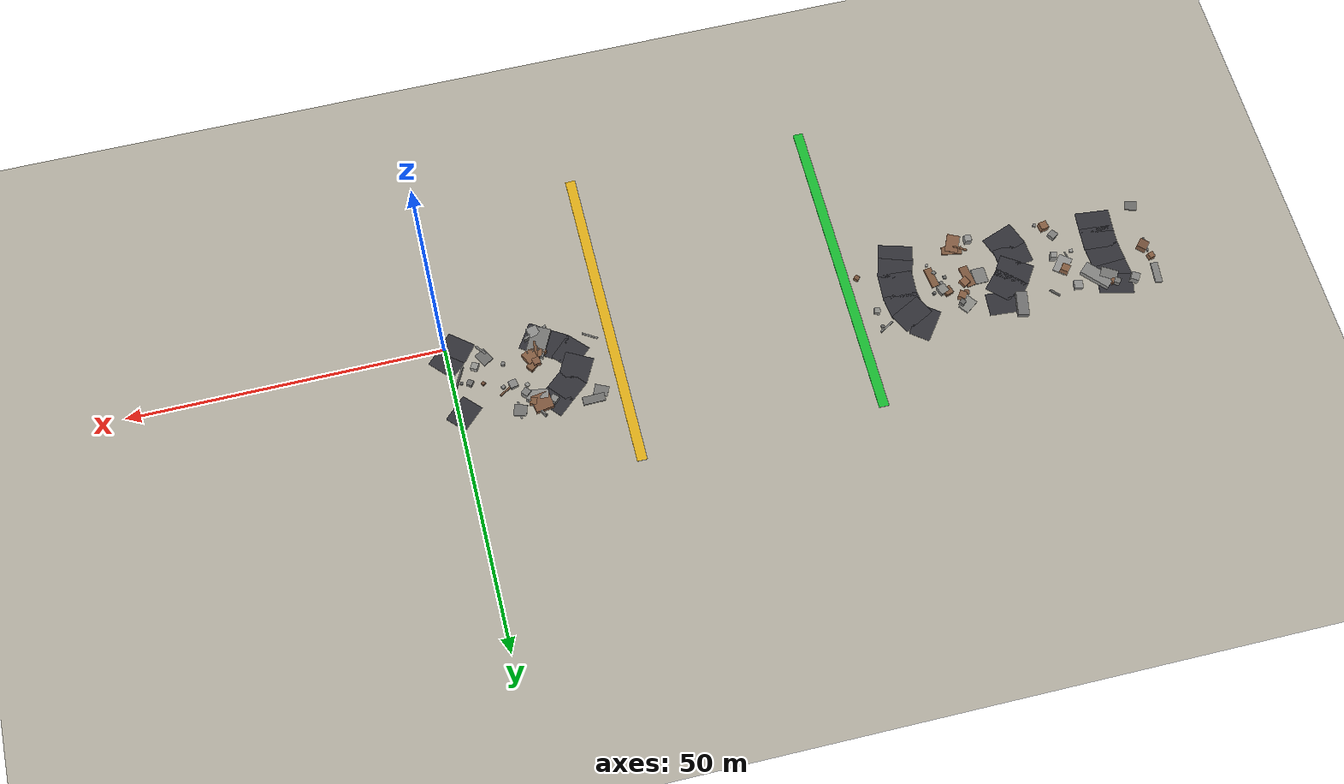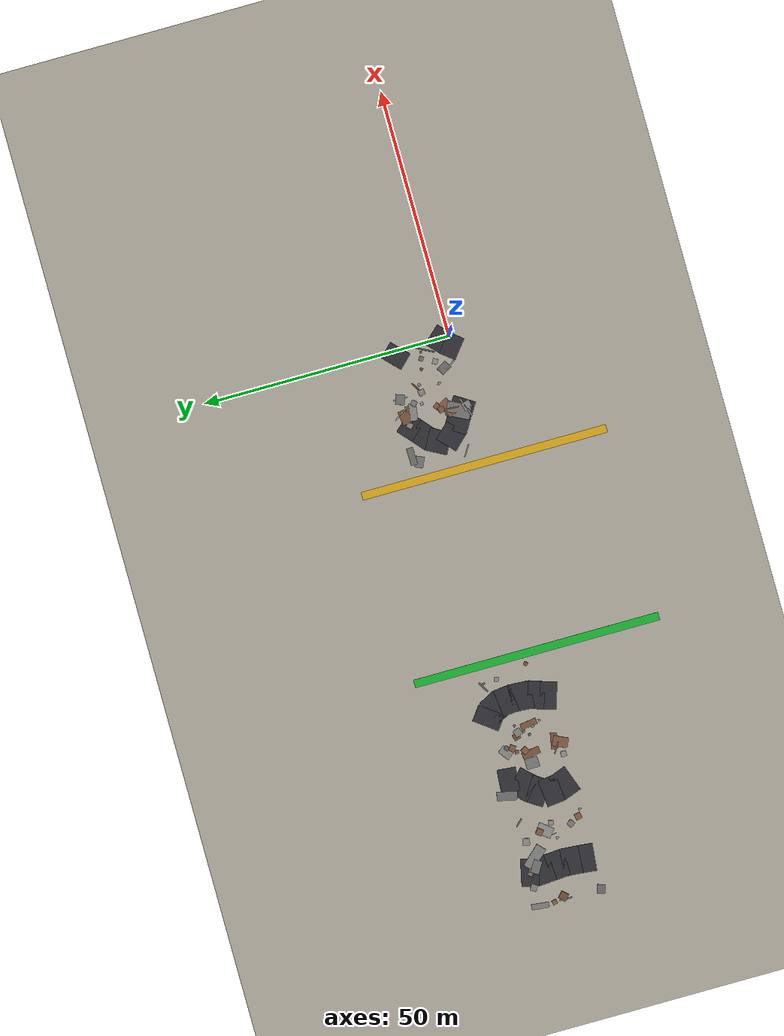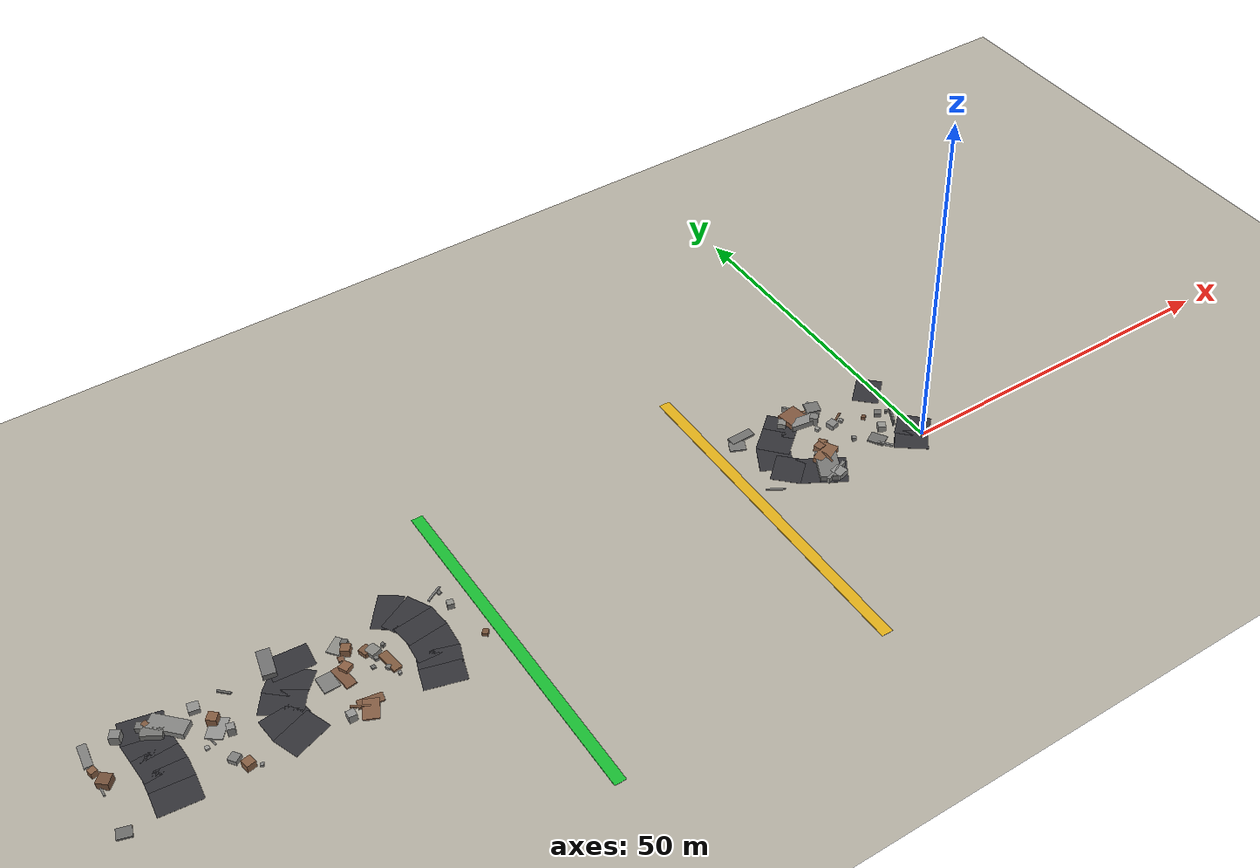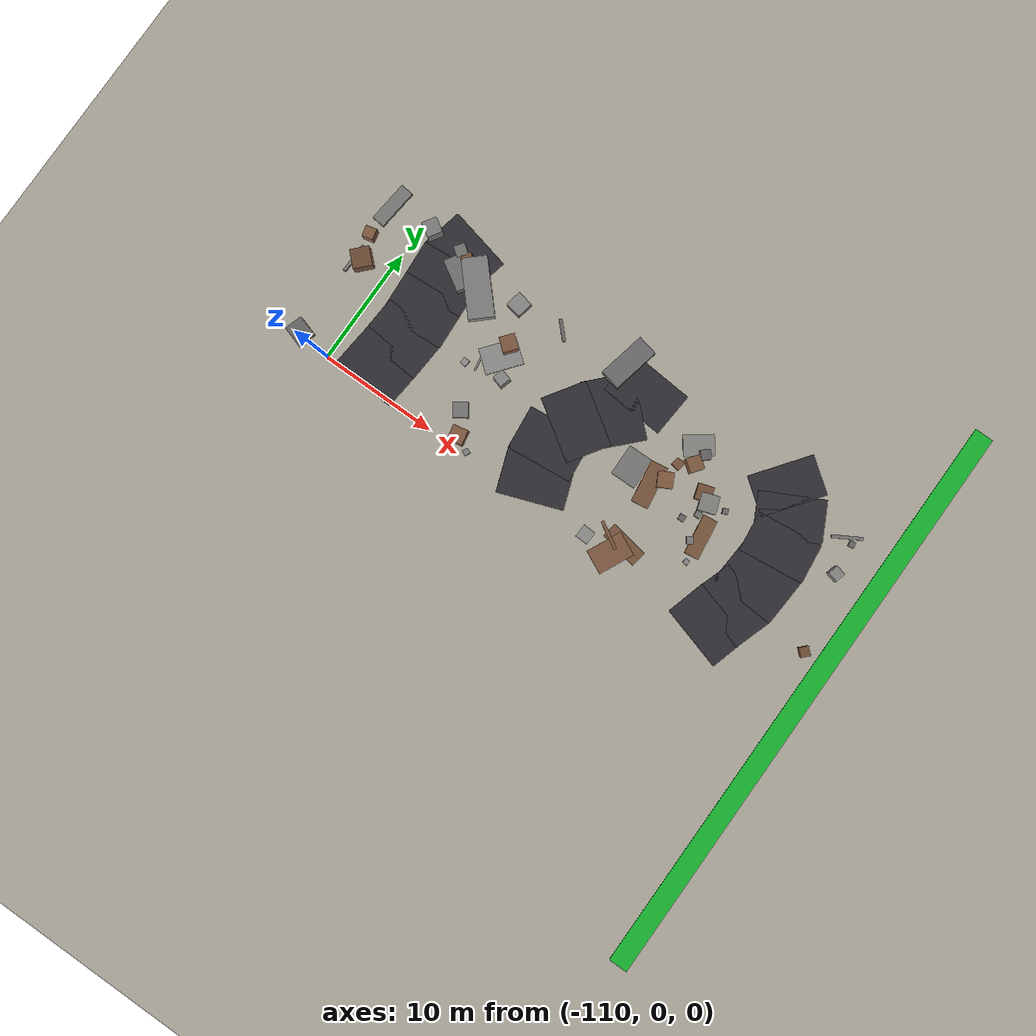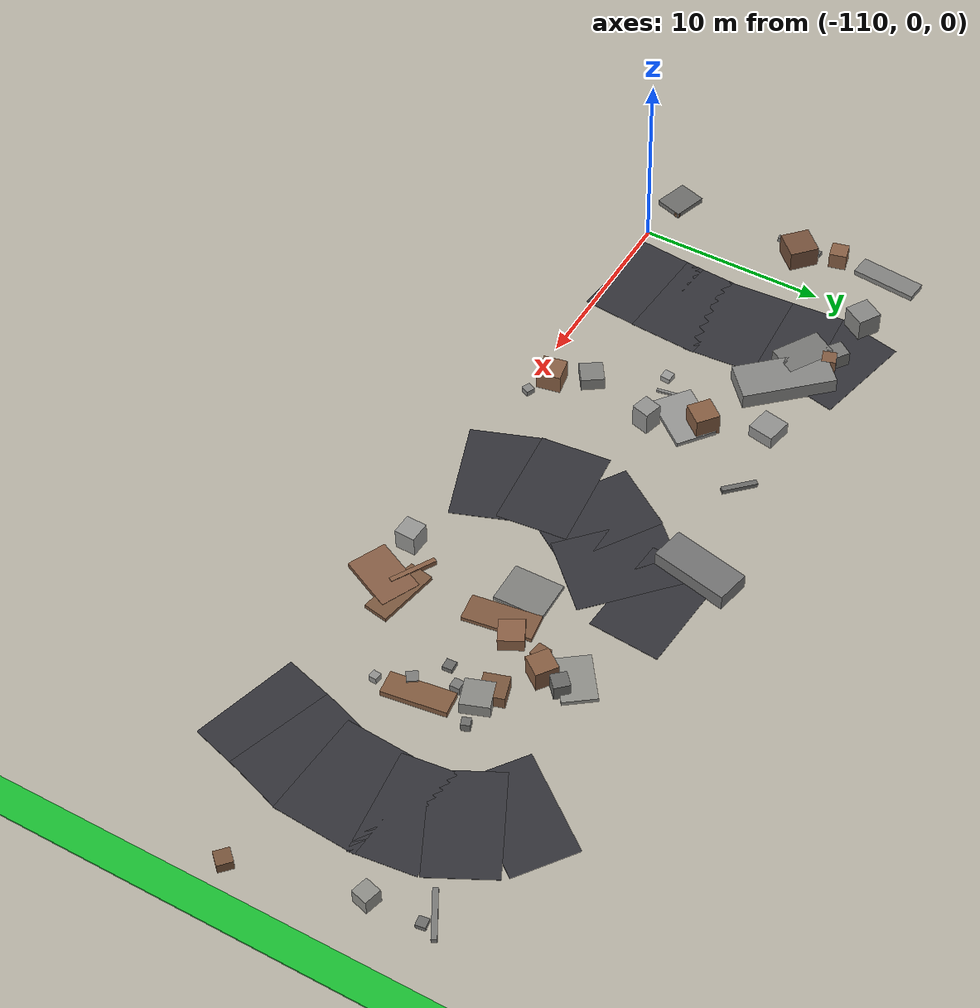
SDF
<sdf version="1.6">
 <world name="navitas_arena">
  <model name="ground_plane">
   <static>true</static>
   <link name="link">
    <collision name="collision">
     <geometry><plane><normal>0 0 1</normal><size>400 400</size></plane></geometry>
     <surface><friction><ode><mu>0.720</mu><mu2>0.720</mu2></ode></friction></surface>
    </collision>
    <visual name="visual">
     <cast_shadows>false</cast_shadows>
     <geometry><plane><normal>0 0 1</normal><size>400 400</size></plane></geometry>
     <material><ambient>0.720 0.700 0.650 1</ambient><diffuse>0.720 0.700 0.650 1</diffuse></material>
    </visual>
   </link>
  </model>
  <model name="brd_kolay_E">
   <static>true</static>
   <pose>-64.200 0.000 0.040 0 0 0.000</pose>
   <link name="link">
    <collision name="col"><geometry><box><size>1.600 50.000 0.080</size></box></geometry></collision>
    <visual name="vis">
     <geometry><box><size>1.600 50.000 0.080</size></box></geometry>
     <material><ambient>0.10 0.75 0.20 1</ambient><diffuse>0.10 0.75 0.20 1</diffuse></material>
    </visual>
   </link>
  </model>
  <model name="road_kolay_1_12">
   <static>true</static>
   <pose>-106.292 1.800 0.040 0 0 1.473</pose>
   <link name="link">
    <collision name="col"><geometry><box><size>3.714 5.520 0.020</size></box></geometry></collision>
    <visual name="vis">
     <geometry><box><size>3.714 5.520 0.020</size></box></geometry>
     <material><ambient>0.20 0.20 0.22 1</ambient><diffuse>0.20 0.20 0.22 1</diffuse></material>
    </visual>
   </link>
  </model>
  <model name="road_kolay_1_13">
   <static>true</static>
   <pose>-106.061 4.600 0.040 0 0 1.504</pose>
   <link name="link">
    <collision name="col"><geometry><box><size>3.706 5.520 0.020</size></box></geometry></collision>
    <visual name="vis">
     <geometry><box><size>3.706 5.520 0.020</size></box></geometry>
     <material><ambient>0.20 0.20 0.22 1</ambient><diffuse>0.20 0.20 0.22 1</diffuse></material>
    </visual>
   </link>
  </model>
  <model name="road_kolay_1_14">
   <static>true</static>
   <pose>-106.060 7.460 0.040 0 0 1.634</pose>
   <link name="link">
    <collision name="col"><geometry><box><size>3.826 5.520 0.020</size></box></geometry></collision>
    <visual name="vis">
     <geometry><box><size>3.826 5.520 0.020</size></box></geometry>
     <material><ambient>0.20 0.20 0.22 1</ambient><diffuse>0.20 0.20 0.22 1</diffuse></material>
    </visual>
   </link>
  </model>
  <model name="road_kolay_1_15">
   <static>true</static>
   <pose>-106.252 10.340 0.040 0 0 1.641</pose>
   <link name="link">
    <collision name="col"><geometry><box><size>3.747 5.520 0.020</size></box></geometry></collision>
    <visual name="vis">
     <geometry><box><size>3.747 5.520 0.020</size></box></geometry>
     <material><ambient>0.20 0.20 0.22 1</ambient><diffuse>0.20 0.20 0.22 1</diffuse></material>
    </visual>
   </link>
  </model>
  <model name="road_kolay_1_16">
   <static>true</static>
   <pose>-106.063 13.042 0.040 0 0 1.350</pose>
   <link name="link">
    <collision name="col"><geometry><box><size>3.528 5.520 0.020</size></box></geometry></collision>
    <visual name="vis">
     <geometry><box><size>3.528 5.520 0.020</size></box></geometry>
     <material><ambient>0.20 0.20 0.22 1</ambient><diffuse>0.20 0.20 0.22 1</diffuse></material>
    </visual>
   </link>
  </model>
  <model name="road_kolay_2_8">
   <static>true</static>
   <pose>-91.010 1.800 0.040 0 0 1.920</pose>
   <link name="link">
    <collision name="col"><geometry><box><size>3.880 5.520 0.020</size></box></geometry></collision>
    <visual name="vis">
     <geometry><box><size>3.880 5.520 0.020</size></box></geometry>
     <material><ambient>0.20 0.20 0.22 1</ambient><diffuse>0.20 0.20 0.22 1</diffuse></material>
    </visual>
   </link>
  </model>
  <model name="road_kolay_2_9">
   <static>true</static>
   <pose>-91.662 4.600 0.040 0 0 1.672</pose>
   <link name="link">
    <collision name="col"><geometry><box><size>3.714 5.520 0.020</size></box></geometry></collision>
    <visual name="vis">
     <geometry><box><size>3.714 5.520 0.020</size></box></geometry>
     <material><ambient>0.20 0.20 0.22 1</ambient><diffuse>0.20 0.20 0.22 1</diffuse></material>
    </visual>
   </link>
  </model>
  <model name="road_kolay_2_10">
   <static>true</static>
   <pose>-91.009 7.213 0.040 0 0 0.990</pose>
   <link name="link">
    <collision name="col"><geometry><box><size>3.802 5.520 0.020</size></box></geometry></collision>
    <visual name="vis">
     <geometry><box><size>3.802 5.520 0.020</size></box></geometry>
     <material><ambient>0.20 0.20 0.22 1</ambient><diffuse>0.20 0.20 0.22 1</diffuse></material>
    </visual>
   </link>
  </model>
  <model name="road_kolay_2_11">
   <static>true</static>
   <pose>-89.071 9.639 0.040 0 0 0.816</pose>
   <link name="link">
    <collision name="col"><geometry><box><size>4.232 5.520 0.020</size></box></geometry></collision>
    <visual name="vis">
     <geometry><box><size>4.232 5.520 0.020</size></box></geometry>
     <material><ambient>0.20 0.20 0.22 1</ambient><diffuse>0.20 0.20 0.22 1</diffuse></material>
    </visual>
   </link>
  </model>
  <model name="road_kolay_2_12">
   <static>true</static>
   <pose>-87.819 12.270 0.040 0 0 1.494</pose>
   <link name="link">
    <collision name="col"><geometry><box><size>3.746 5.520 0.020</size></box></geometry></collision>
    <visual name="vis">
     <geometry><box><size>3.746 5.520 0.020</size></box></geometry>
     <material><ambient>0.20 0.20 0.22 1</ambient><diffuse>0.20 0.20 0.22 1</diffuse></material>
    </visual>
   </link>
  </model>
  <model name="road_kolay_3_13">
   <static>true</static>
   <pose>-73.425 0.167 0.040 0 0 1.292</pose>
   <link name="link">
    <collision name="col"><geometry><box><size>3.327 5.520 0.020</size></box></geometry></collision>
    <visual name="vis">
     <geometry><box><size>3.327 5.520 0.020</size></box></geometry>
     <material><ambient>0.20 0.20 0.22 1</ambient><diffuse>0.20 0.20 0.22 1</diffuse></material>
    </visual>
   </link>
  </model>
  <model name="road_kolay_3_14">
   <static>true</static>
   <pose>-72.700 2.500 0.040 0 0 1.247</pose>
   <link name="link">
    <collision name="col"><geometry><box><size>3.361 5.520 0.020</size></box></geometry></collision>
    <visual name="vis">
     <geometry><box><size>3.361 5.520 0.020</size></box></geometry>
     <material><ambient>0.20 0.20 0.22 1</ambient><diffuse>0.20 0.20 0.22 1</diffuse></material>
    </visual>
   </link>
  </model>
  <model name="road_kolay_3_15">
   <static>true</static>
   <pose>-72.196 5.431 0.040 0 0 1.507</pose>
   <link name="link">
    <collision name="col"><geometry><box><size>4.436 5.520 0.020</size></box></geometry></collision>
    <visual name="vis">
     <geometry><box><size>4.436 5.520 0.020</size></box></geometry>
     <material><ambient>0.20 0.20 0.22 1</ambient><diffuse>0.20 0.20 0.22 1</diffuse></material>
    </visual>
   </link>
  </model>
  <model name="road_kolay_3_16">
   <static>true</static>
   <pose>-72.229 8.426 0.040 0 0 1.689</pose>
   <link name="link">
    <collision name="col"><geometry><box><size>3.378 5.520 0.020</size></box></geometry></collision>
    <visual name="vis">
     <geometry><box><size>3.378 5.520 0.020</size></box></geometry>
     <material><ambient>0.20 0.20 0.22 1</ambient><diffuse>0.20 0.20 0.22 1</diffuse></material>
    </visual>
   </link>
  </model>
  <model name="road_kolay_3_17">
   <static>true</static>
   <pose>-72.971 10.817 0.040 0 0 2.045</pose>
   <link name="link">
    <collision name="col"><geometry><box><size>3.510 5.520 0.020</size></box></geometry></collision>
    <visual name="vis">
     <geometry><box><size>3.510 5.520 0.020</size></box></geometry>
     <material><ambient>0.20 0.20 0.22 1</ambient><diffuse>0.20 0.20 0.22 1</diffuse></material>
    </visual>
   </link>
  </model>
  <model name="road_kolay_3_18">
   <static>true</static>
   <pose>-74.563 12.722 0.040 0 0 2.500</pose>
   <link name="link">
    <collision name="col"><geometry><box><size>3.385 5.520 0.020</size></box></geometry></collision>
    <visual name="vis">
     <geometry><box><size>3.385 5.520 0.020</size></box></geometry>
     <material><ambient>0.20 0.20 0.22 1</ambient><diffuse>0.20 0.20 0.22 1</diffuse></material>
    </visual>
   </link>
  </model>
  <model name="blk_kolay_1_1_1">
   <static>true</static>
   <pose>-106.239 12.950 0.425 0 0 0.953</pose>
   <link name="link">
    <collision name="col"><geometry><box><size>0.945 0.945 0.850</size></box></geometry></collision>
    <visual name="vis">
     <geometry><box><size>0.945 0.945 0.850</size></box></geometry>
     <material><ambient>0.47 0.47 0.46 1</ambient><diffuse>0.47 0.47 0.46 1</diffuse></material>
    </visual>
   </link>
  </model>
  <model name="blk_kolay_1_1_2">
   <static>true</static>
   <pose>-109.075 13.067 0.622 0 0 1.023</pose>
   <link name="link">
    <collision name="col"><geometry><box><size>1.285 1.285 1.243</size></box></geometry></collision>
    <visual name="vis">
     <geometry><box><size>1.285 1.285 1.243</size></box></geometry>
     <material><ambient>0.53 0.53 0.52 1</ambient><diffuse>0.53 0.53 0.52 1</diffuse></material>
    </visual>
   </link>
  </model>
  <model name="blk_kolay_1_1_3">
   <static>true</static>
   <pose>-105.275 11.510 0.425 0 0 2.600</pose>
   <link name="link">
    <collision name="col"><geometry><box><size>2.690 1.712 0.850</size></box></geometry></collision>
    <visual name="vis">
     <geometry><box><size>2.690 1.712 0.850</size></box></geometry>
     <material><ambient>0.47 0.47 0.46 1</ambient><diffuse>0.47 0.47 0.46 1</diffuse></material>
    </visual>
   </link>
  </model>
  <model name="blk_kolay_1_1_4">
   <static>true</static>
   <pose>-103.430 11.310 0.425 0 0 2.315</pose>
   <link name="link">
    <collision name="col"><geometry><box><size>4.928 2.129 0.850</size></box></geometry></collision>
    <visual name="vis">
     <geometry><box><size>4.928 2.129 0.850</size></box></geometry>
     <material><ambient>0.53 0.53 0.52 1</ambient><diffuse>0.53 0.53 0.52 1</diffuse></material>
    </visual>
   </link>
  </model>
  <model name="blk_kolay_1_1_6">
   <static>true</static>
   <pose>-105.601 12.809 0.425 0 0 1.890</pose>
   <link name="link">
    <collision name="col"><geometry><box><size>0.738 0.738 0.850</size></box></geometry></collision>
    <visual name="vis">
     <geometry><box><size>0.738 0.738 0.850</size></box></geometry>
     <material><ambient>0.51 0.36 0.26 1</ambient><diffuse>0.51 0.36 0.26 1</diffuse></material>
    </visual>
   </link>
  </model>
  <model name="blk_kolay_2_1_5">
   <static>true</static>
   <pose>-90.291 13.326 0.425 0 0 1.360</pose>
   <link name="link">
    <collision name="col"><geometry><box><size>4.060 1.748 0.850</size></box></geometry></collision>
    <visual name="vis">
     <geometry><box><size>4.060 1.748 0.850</size></box></geometry>
     <material><ambient>0.45 0.45 0.45 1</ambient><diffuse>0.45 0.45 0.45 1</diffuse></material>
    </visual>
   </link>
  </model>
  <model name="deb_kolay_0">
   <static>true</static>
   <pose>-83.755 1.420 0.145 0 0 2.621</pose>
   <link name="link">
    <collision name="col"><geometry><box><size>2.419 0.249 0.290</size></box></geometry></collision>
    <visual name="vis">
     <geometry><box><size>2.419 0.249 0.290</size></box></geometry>
     <material><ambient>0.54 0.38 0.27 1</ambient><diffuse>0.54 0.38 0.27 1</diffuse></material>
    </visual>
   </link>
  </model>
  <model name="deb_kolay_4">
   <static>true</static>
   <pose>-96.100 12.502 0.121 0 0 2.345</pose>
   <link name="link">
    <collision name="col"><geometry><box><size>1.824 0.286 0.242</size></box></geometry></collision>
    <visual name="vis">
     <geometry><box><size>1.824 0.286 0.242</size></box></geometry>
     <material><ambient>0.42 0.42 0.41 1</ambient><diffuse>0.42 0.42 0.41 1</diffuse></material>
    </visual>
   </link>
  </model>
  <model name="deb_kolay_5">
   <static>true</static>
   <pose>-112.941 7.632 0.127 0 0 1.543</pose>
   <link name="link">
    <collision name="col"><geometry><box><size>2.529 0.253 0.254</size></box></geometry></collision>
    <visual name="vis">
     <geometry><box><size>2.529 0.253 0.254</size></box></geometry>
     <material><ambient>0.49 0.49 0.48 1</ambient><diffuse>0.49 0.49 0.48 1</diffuse></material>
    </visual>
   </link>
  </model>
  <model name="deb_kolay_8">
   <static>true</static>
   <pose>-78.372 4.756 0.212 0 0 2.169</pose>
   <link name="link">
    <collision name="col"><geometry><box><size>0.574 0.574 0.424</size></box></geometry></collision>
    <visual name="vis">
     <geometry><box><size>0.574 0.574 0.424</size></box></geometry>
     <material><ambient>0.49 0.49 0.48 1</ambient><diffuse>0.49 0.49 0.48 1</diffuse></material>
    </visual>
   </link>
  </model>
  <model name="deb_kolay_9">
   <static>true</static>
   <pose>-100.905 5.984 0.149 0 0 3.071</pose>
   <link name="link">
    <collision name="col"><geometry><box><size>0.536 0.536 0.299</size></box></geometry></collision>
    <visual name="vis">
     <geometry><box><size>0.536 0.536 0.299</size></box></geometry>
     <material><ambient>0.61 0.61 0.60 1</ambient><diffuse>0.61 0.61 0.60 1</diffuse></material>
    </visual>
   </link>
  </model>
  <model name="deb_kolay_10">
   <static>true</static>
   <pose>-67.849 11.840 0.128 0 0 1.731</pose>
   <link name="link">
    <collision name="col"><geometry><box><size>0.497 0.497 0.255</size></box></geometry></collision>
    <visual name="vis">
     <geometry><box><size>0.497 0.497 0.255</size></box></geometry>
     <material><ambient>0.43 0.43 0.42 1</ambient><diffuse>0.43 0.43 0.42 1</diffuse></material>
    </visual>
   </link>
  </model>
  <model name="deb_kolay_13">
   <static>true</static>
   <pose>-97.872 0.941 0.520 0 0 0.194</pose>
   <link name="link">
    <collision name="col"><geometry><box><size>1.266 1.266 1.039</size></box></geometry></collision>
    <visual name="vis">
     <geometry><box><size>1.266 1.266 1.039</size></box></geometry>
     <material><ambient>0.54 0.38 0.27 1</ambient><diffuse>0.54 0.38 0.27 1</diffuse></material>
    </visual>
   </link>
  </model>
  <model name="deb_kolay_16">
   <static>true</static>
   <pose>-98.803 9.090 0.621 0 0 2.458</pose>
   <link name="link">
    <collision name="col"><geometry><box><size>1.273 1.273 1.241</size></box></geometry></collision>
    <visual name="vis">
     <geometry><box><size>1.273 1.273 1.241</size></box></geometry>
     <material><ambient>0.53 0.37 0.26 1</ambient><diffuse>0.53 0.37 0.26 1</diffuse></material>
    </visual>
   </link>
  </model>
  <model name="deb_kolay_20">
   <static>true</static>
   <pose>-112.910 12.828 0.147 0 0 1.467</pose>
   <link name="link">
    <collision name="col"><geometry><box><size>3.474 1.107 0.293</size></box></geometry></collision>
    <visual name="vis">
     <geometry><box><size>3.474 1.107 0.293</size></box></geometry>
     <material><ambient>0.51 0.51 0.50 1</ambient><diffuse>0.51 0.51 0.50 1</diffuse></material>
    </visual>
   </link>
  </model>
  <model name="deb_kolay_24">
   <static>true</static>
   <pose>-82.535 9.127 0.143 0 0 1.430</pose>
   <link name="link">
    <collision name="col"><geometry><box><size>0.752 0.752 0.286</size></box></geometry></collision>
    <visual name="vis">
     <geometry><box><size>0.752 0.752 0.286</size></box></geometry>
     <material><ambient>0.50 0.35 0.25 1</ambient><diffuse>0.50 0.35 0.25 1</diffuse></material>
    </visual>
   </link>
  </model>
  <model name="deb_kolay_28">
   <static>true</static>
   <pose>-78.997 6.772 0.228 0 0 1.586</pose>
   <link name="link">
    <collision name="col"><geometry><box><size>0.506 0.506 0.455</size></box></geometry></collision>
    <visual name="vis">
     <geometry><box><size>0.506 0.506 0.455</size></box></geometry>
     <material><ambient>0.48 0.48 0.47 1</ambient><diffuse>0.48 0.48 0.47 1</diffuse></material>
    </visual>
   </link>
  </model>
  <model name="deb_kolay_35">
   <static>true</static>
   <pose>-85.274 0.388 0.579 0 0 3.106</pose>
   <link name="link">
    <collision name="col"><geometry><box><size>1.080 1.080 1.157</size></box></geometry></collision>
    <visual name="vis">
     <geometry><box><size>1.080 1.080 1.157</size></box></geometry>
     <material><ambient>0.59 0.59 0.58 1</ambient><diffuse>0.59 0.59 0.58 1</diffuse></material>
    </visual>
   </link>
  </model>
  <model name="deb_kolay_40">
   <static>true</static>
   <pose>-112.806 0.699 0.118 0 0 0.075</pose>
   <link name="link">
    <collision name="col"><geometry><box><size>1.922 0.285 0.236</size></box></geometry></collision>
    <visual name="vis">
     <geometry><box><size>1.922 0.285 0.236</size></box></geometry>
     <material><ambient>0.46 0.33 0.23 1</ambient><diffuse>0.46 0.33 0.23 1</diffuse></material>
    </visual>
   </link>
  </model>
  <model name="deb_kolay_41">
   <static>true</static>
   <pose>-112.239 7.899 0.568 0 0 2.390</pose>
   <link name="link">
    <collision name="col"><geometry><box><size>1.561 1.561 1.136</size></box></geometry></collision>
    <visual name="vis">
     <geometry><box><size>1.561 1.561 1.136</size></box></geometry>
     <material><ambient>0.46 0.32 0.23 1</ambient><diffuse>0.46 0.32 0.23 1</diffuse></material>
    </visual>
   </link>
  </model>
  <model name="deb_kolay_47">
   <static>true</static>
   <pose>-81.516 9.792 0.570 0 0 0.941</pose>
   <link name="link">
    <collision name="col"><geometry><box><size>1.186 1.186 1.140</size></box></geometry></collision>
    <visual name="vis">
     <geometry><box><size>1.186 1.186 1.140</size></box></geometry>
     <material><ambient>0.53 0.37 0.26 1</ambient><diffuse>0.53 0.37 0.26 1</diffuse></material>
    </visual>
   </link>
  </model>
  <model name="deb_kolay_49">
   <static>true</static>
   <pose>-82.055 11.274 0.110 0 0 0.641</pose>
   <link name="link">
    <collision name="col"><geometry><box><size>2.513 1.729 0.219</size></box></geometry></collision>
    <visual name="vis">
     <geometry><box><size>2.513 1.729 0.219</size></box></geometry>
     <material><ambient>0.56 0.56 0.54 1</ambient><diffuse>0.56 0.56 0.54 1</diffuse></material>
    </visual>
   </link>
  </model>
  <model name="deb_kolay_51">
   <static>true</static>
   <pose>-96.647 0.253 0.148 0 0 2.717</pose>
   <link name="link">
    <collision name="col"><geometry><box><size>0.477 0.477 0.295</size></box></geometry></collision>
    <visual name="vis">
     <geometry><box><size>0.477 0.477 0.295</size></box></geometry>
     <material><ambient>0.53 0.53 0.52 1</ambient><diffuse>0.53 0.53 0.52 1</diffuse></material>
    </visual>
   </link>
  </model>
  <model name="deb_kolay_60">
   <static>true</static>
   <pose>-82.364 1.500 0.110 0 0 2.964</pose>
   <link name="link">
    <collision name="col"><geometry><box><size>3.247 1.315 0.219</size></box></geometry></collision>
    <visual name="vis">
     <geometry><box><size>3.247 1.315 0.219</size></box></geometry>
     <material><ambient>0.49 0.35 0.25 1</ambient><diffuse>0.49 0.35 0.25 1</diffuse></material>
    </visual>
   </link>
  </model>
  <model name="deb_kolay_63">
   <static>true</static>
   <pose>-66.205 2.830 0.279 0 0 2.394</pose>
   <link name="link">
    <collision name="col"><geometry><box><size>0.781 0.781 0.558</size></box></geometry></collision>
    <visual name="vis">
     <geometry><box><size>0.781 0.781 0.558</size></box></geometry>
     <material><ambient>0.47 0.33 0.23 1</ambient><diffuse>0.47 0.33 0.23 1</diffuse></material>
    </visual>
   </link>
  </model>
  <model name="deb_kolay_65">
   <static>true</static>
   <pose>-83.431 6.509 0.114 0 0 1.714</pose>
   <link name="link">
    <collision name="col"><geometry><box><size>3.569 1.430 0.229</size></box></geometry></collision>
    <visual name="vis">
     <geometry><box><size>3.569 1.430 0.229</size></box></geometry>
     <material><ambient>0.50 0.35 0.25 1</ambient><diffuse>0.50 0.35 0.25 1</diffuse></material>
    </visual>
   </link>
  </model>
  <model name="deb_kolay_72">
   <static>true</static>
   <pose>-98.840 8.001 0.107 0 0 0.904</pose>
   <link name="link">
    <collision name="col"><geometry><box><size>3.129 2.164 0.213</size></box></geometry></collision>
    <visual name="vis">
     <geometry><box><size>3.129 2.164 0.213</size></box></geometry>
     <material><ambient>0.59 0.59 0.58 1</ambient><diffuse>0.59 0.59 0.58 1</diffuse></material>
    </visual>
   </link>
  </model>
  <model name="deb_kolay_80">
   <static>true</static>
   <pose>-98.897 2.679 0.348 0 0 0.603</pose>
   <link name="link">
    <collision name="col"><geometry><box><size>1.211 1.211 0.696</size></box></geometry></collision>
    <visual name="vis">
     <geometry><box><size>1.211 1.211 0.696</size></box></geometry>
     <material><ambient>0.50 0.50 0.49 1</ambient><diffuse>0.50 0.50 0.49 1</diffuse></material>
    </visual>
   </link>
  </model>
  <model name="deb_kolay_83">
   <static>true</static>
   <pose>-82.658 7.492 0.366 0 0 2.053</pose>
   <link name="link">
    <collision name="col"><geometry><box><size>1.280 1.280 0.732</size></box></geometry></collision>
    <visual name="vis">
     <geometry><box><size>1.280 1.280 0.732</size></box></geometry>
     <material><ambient>0.55 0.38 0.27 1</ambient><diffuse>0.55 0.38 0.27 1</diffuse></material>
    </visual>
   </link>
  </model>
  <model name="deb_kolay_84">
   <static>true</static>
   <pose>-100.014 12.130 0.350 0 0 2.949</pose>
   <link name="link">
    <collision name="col"><geometry><box><size>1.379 1.379 0.699</size></box></geometry></collision>
    <visual name="vis">
     <geometry><box><size>1.379 1.379 0.699</size></box></geometry>
     <material><ambient>0.57 0.57 0.56 1</ambient><diffuse>0.57 0.57 0.56 1</diffuse></material>
    </visual>
   </link>
  </model>
  <model name="deb_kolay_86">
   <static>true</static>
   <pose>-112.929 0.404 0.141 0 0 2.844</pose>
   <link name="link">
    <collision name="col"><geometry><box><size>1.856 1.525 0.282</size></box></geometry></collision>
    <visual name="vis">
     <geometry><box><size>1.856 1.525 0.282</size></box></geometry>
     <material><ambient>0.43 0.43 0.42 1</ambient><diffuse>0.43 0.43 0.42 1</diffuse></material>
    </visual>
   </link>
  </model>
  <model name="deb_kolay_88">
   <static>true</static>
   <pose>-77.403 8.214 0.234 0 0 0.372</pose>
   <link name="link">
    <collision name="col"><geometry><box><size>0.455 0.455 0.469</size></box></geometry></collision>
    <visual name="vis">
     <geometry><box><size>0.455 0.455 0.469</size></box></geometry>
     <material><ambient>0.43 0.43 0.42 1</ambient><diffuse>0.43 0.43 0.42 1</diffuse></material>
    </visual>
   </link>
  </model>
  <model name="deb_kolay_89">
   <static>true</static>
   <pose>-79.863 5.837 0.136 0 0 1.638</pose>
   <link name="link">
    <collision name="col"><geometry><box><size>0.514 0.514 0.272</size></box></geometry></collision>
    <visual name="vis">
     <geometry><box><size>0.514 0.514 0.272</size></box></geometry>
     <material><ambient>0.42 0.42 0.41 1</ambient><diffuse>0.42 0.42 0.41 1</diffuse></material>
    </visual>
   </link>
  </model>
  <model name="deb_kolay_91">
   <static>true</static>
   <pose>-97.639 6.500 0.652 0 0 1.300</pose>
   <link name="link">
    <collision name="col"><geometry><box><size>0.967 0.967 1.303</size></box></geometry></collision>
    <visual name="vis">
     <geometry><box><size>0.967 0.967 1.303</size></box></geometry>
     <material><ambient>0.57 0.57 0.56 1</ambient><diffuse>0.57 0.57 0.56 1</diffuse></material>
    </visual>
   </link>
  </model>
  <model name="deb_kolay_98">
   <static>true</static>
   <pose>-79.575 8.403 0.349 0 0 0.301</pose>
   <link name="link">
    <collision name="col"><geometry><box><size>1.294 1.294 0.698</size></box></geometry></collision>
    <visual name="vis">
     <geometry><box><size>1.294 1.294 0.698</size></box></geometry>
     <material><ambient>0.48 0.34 0.24 1</ambient><diffuse>0.48 0.34 0.24 1</diffuse></material>
    </visual>
   </link>
  </model>
  <model name="deb_kolay_102">
   <static>true</static>
   <pose>-77.627 3.218 0.183 0 0 3.057</pose>
   <link name="link">
    <collision name="col"><geometry><box><size>0.411 0.411 0.366</size></box></geometry></collision>
    <visual name="vis">
     <geometry><box><size>0.411 0.411 0.366</size></box></geometry>
     <material><ambient>0.57 0.57 0.56 1</ambient><diffuse>0.57 0.57 0.56 1</diffuse></material>
    </visual>
   </link>
  </model>
  <model name="deb_kolay_109">
   <static>true</static>
   <pose>-78.851 7.950 0.350 0 0 0.342</pose>
   <link name="link">
    <collision name="col"><geometry><box><size>1.467 1.467 0.699</size></box></geometry></collision>
    <visual name="vis">
     <geometry><box><size>1.467 1.467 0.699</size></box></geometry>
     <material><ambient>0.54 0.54 0.52 1</ambient><diffuse>0.54 0.54 0.52 1</diffuse></material>
    </visual>
   </link>
  </model>
  <model name="deb_kolay_113">
   <static>true</static>
   <pose>-77.796 5.451 0.168 0 0 1.708</pose>
   <link name="link">
    <collision name="col"><geometry><box><size>3.327 1.206 0.337</size></box></geometry></collision>
    <visual name="vis">
     <geometry><box><size>3.327 1.206 0.337</size></box></geometry>
     <material><ambient>0.51 0.36 0.25 1</ambient><diffuse>0.51 0.36 0.25 1</diffuse></material>
    </visual>
   </link>
  </model>
  <model name="deb_kolay_124">
   <static>true</static>
   <pose>-82.859 0.341 0.123 0 0 1.133</pose>
   <link name="link">
    <collision name="col"><geometry><box><size>3.051 2.058 0.246</size></box></geometry></collision>
    <visual name="vis">
     <geometry><box><size>3.051 2.058 0.246</size></box></geometry>
     <material><ambient>0.53 0.37 0.27 1</ambient><diffuse>0.53 0.37 0.27 1</diffuse></material>
    </visual>
   </link>
  </model>
  <model name="deb_kolay_129">
   <static>true</static>
   <pose>-68.451 12.077 0.116 0 0 0.524</pose>
   <link name="link">
    <collision name="col"><geometry><box><size>2.525 0.271 0.232</size></box></geometry></collision>
    <visual name="vis">
     <geometry><box><size>2.525 0.271 0.232</size></box></geometry>
     <material><ambient>0.48 0.48 0.47 1</ambient><diffuse>0.48 0.48 0.47 1</diffuse></material>
    </visual>
   </link>
  </model>
  <model name="deb_kolay_131">
   <static>true</static>
   <pose>-85.357 6.843 0.103 0 0 1.583</pose>
   <link name="link">
    <collision name="col"><geometry><box><size>2.613 2.144 0.206</size></box></geometry></collision>
    <visual name="vis">
     <geometry><box><size>2.613 2.144 0.206</size></box></geometry>
     <material><ambient>0.50 0.50 0.49 1</ambient><diffuse>0.50 0.50 0.49 1</diffuse></material>
    </visual>
   </link>
  </model>
  <model name="deb_kolay_132">
   <static>true</static>
   <pose>-100.071 6.935 0.066 0 0 1.742</pose>
   <link name="link">
    <collision name="col"><geometry><box><size>2.094 0.155 0.132</size></box></geometry></collision>
    <visual name="vis">
     <geometry><box><size>2.094 0.155 0.132</size></box></geometry>
     <material><ambient>0.55 0.55 0.54 1</ambient><diffuse>0.55 0.55 0.54 1</diffuse></material>
    </visual>
   </link>
  </model>
  <model name="deb_kolay_135">
   <static>true</static>
   <pose>-112.939 9.922 0.464 0 0 1.809</pose>
   <link name="link">
    <collision name="col"><geometry><box><size>0.917 0.917 0.927</size></box></geometry></collision>
    <visual name="vis">
     <geometry><box><size>0.917 0.917 0.927</size></box></geometry>
     <material><ambient>0.54 0.38 0.27 1</ambient><diffuse>0.54 0.38 0.27 1</diffuse></material>
    </visual>
   </link>
  </model>
  <model name="chic_kolay_3">
   <static>true</static>
   <pose>-67.664 9.186 0.425 0 0 1.313</pose>
   <link name="link">
    <collision name="col"><geometry><box><size>0.883 0.883 0.850</size></box></geometry></collision>
    <visual name="vis">
     <geometry><box><size>0.883 0.883 0.850</size></box></geometry>
     <material><ambient>0.56 0.56 0.54 1</ambient><diffuse>0.56 0.56 0.54 1</diffuse></material>
    </visual>
   </link>
  </model>
  <model name="chic_kolay_4">
   <static>true</static>
   <pose>-81.221 10.898 0.425 0 0 2.317</pose>
   <link name="link">
    <collision name="col"><geometry><box><size>0.823 0.823 0.850</size></box></geometry></collision>
    <visual name="vis">
     <geometry><box><size>0.823 0.823 0.850</size></box></geometry>
     <material><ambient>0.41 0.41 0.40 1</ambient><diffuse>0.41 0.41 0.40 1</diffuse></material>
    </visual>
   </link>
  </model>
  <model name="brd_orta_W">
   <static>true</static>
   <pose>-25.800 0.000 0.040 0 0 0.000</pose>
   <link name="link">
    <collision name="col"><geometry><box><size>1.600 50.000 0.080</size></box></geometry></collision>
    <visual name="vis">
     <geometry><box><size>1.600 50.000 0.080</size></box></geometry>
     <material><ambient>0.90 0.70 0.10 1</ambient><diffuse>0.90 0.70 0.10 1</diffuse></material>
    </visual>
   </link>
  </model>
  <model name="road_orta_1_13">
   <static>true</static>
   <pose>-14.252 1.333 0.040 0 0 2.574</pose>
   <link name="link">
    <collision name="col"><geometry><box><size>3.791 4.600 0.020</size></box></geometry></collision>
    <visual name="vis">
     <geometry><box><size>3.791 4.600 0.020</size></box></geometry>
     <material><ambient>0.20 0.20 0.22 1</ambient><diffuse>0.20 0.20 0.22 1</diffuse></material>
    </visual>
   </link>
  </model>
  <model name="road_orta_1_14">
   <static>true</static>
   <pose>-16.748 2.889 0.040 0 0 2.595</pose>
   <link name="link">
    <collision name="col"><geometry><box><size>3.891 4.600 0.020</size></box></geometry></collision>
    <visual name="vis">
     <geometry><box><size>3.891 4.600 0.020</size></box></geometry>
     <material><ambient>0.20 0.20 0.22 1</ambient><diffuse>0.20 0.20 0.22 1</diffuse></material>
    </visual>
   </link>
  </model>
  <model name="road_orta_1_15">
   <static>true</static>
   <pose>-19.128 4.833 0.040 0 0 2.328</pose>
   <link name="link">
    <collision name="col"><geometry><box><size>4.109 4.600 0.020</size></box></geometry></collision>
    <visual name="vis">
     <geometry><box><size>4.109 4.600 0.020</size></box></geometry>
     <material><ambient>0.20 0.20 0.22 1</ambient><diffuse>0.20 0.20 0.22 1</diffuse></material>
    </visual>
   </link>
  </model>
  <model name="road_orta_1_16">
   <static>true</static>
   <pose>-19.398 7.566 0.040 0 0 1.083</pose>
   <link name="link">
    <collision name="col"><geometry><box><size>4.445 4.600 0.020</size></box></geometry></collision>
    <visual name="vis">
     <geometry><box><size>4.445 4.600 0.020</size></box></geometry>
     <material><ambient>0.20 0.20 0.22 1</ambient><diffuse>0.20 0.20 0.22 1</diffuse></material>
    </visual>
   </link>
  </model>
  <model name="road_orta_1_17">
   <static>true</static>
   <pose>-17.380 10.157 0.040 0 0 0.713</pose>
   <link name="link">
    <collision name="col"><geometry><box><size>4.036 4.600 0.020</size></box></geometry></collision>
    <visual name="vis">
     <geometry><box><size>4.036 4.600 0.020</size></box></geometry>
     <material><ambient>0.20 0.20 0.22 1</ambient><diffuse>0.20 0.20 0.22 1</diffuse></material>
    </visual>
   </link>
  </model>
  <model name="road_orta_1_18">
   <static>true</static>
   <pose>-15.175 12.091 0.040 0 0 0.728</pose>
   <link name="link">
    <collision name="col"><geometry><box><size>3.631 4.600 0.020</size></box></geometry></collision>
    <visual name="vis">
     <geometry><box><size>3.631 4.600 0.020</size></box></geometry>
     <material><ambient>0.20 0.20 0.22 1</ambient><diffuse>0.20 0.20 0.22 1</diffuse></material>
    </visual>
   </link>
  </model>
  <model name="road_orta_2_9">
   <static>true</static>
   <pose>-1.967 0.000 0.040 0 0 0.899</pose>
   <link name="link">
    <collision name="col"><geometry><box><size>3.455 4.600 0.020</size></box></geometry></collision>
    <visual name="vis">
     <geometry><box><size>3.455 4.600 0.020</size></box></geometry>
     <material><ambient>0.20 0.20 0.22 1</ambient><diffuse>0.20 0.20 0.22 1</diffuse></material>
    </visual>
   </link>
  </model>
  <model name="road_orta_2_10">
   <static>true</static>
   <pose>-0.106 2.000 0.040 0 0 0.753</pose>
   <link name="link">
    <collision name="col"><geometry><box><size>3.823 4.600 0.020</size></box></geometry></collision>
    <visual name="vis">
     <geometry><box><size>3.823 4.600 0.020</size></box></geometry>
     <material><ambient>0.20 0.20 0.22 1</ambient><diffuse>0.20 0.20 0.22 1</diffuse></material>
    </visual>
   </link>
  </model>
  <model name="road_orta_2_14">
   <static>true</static>
   <pose>-0.924 11.153 0.040 0 0 2.340</pose>
   <link name="link">
    <collision name="col"><geometry><box><size>3.624 4.600 0.020</size></box></geometry></collision>
    <visual name="vis">
     <geometry><box><size>3.624 4.600 0.020</size></box></geometry>
     <material><ambient>0.20 0.20 0.22 1</ambient><diffuse>0.20 0.20 0.22 1</diffuse></material>
    </visual>
   </link>
  </model>
  <model name="blk_orta_1_1_1">
   <static>true</static>
   <pose>-14.133 0.273 0.425 0 0 0.244</pose>
   <link name="link">
    <collision name="col"><geometry><box><size>1.694 1.694 0.850</size></box></geometry></collision>
    <visual name="vis">
     <geometry><box><size>1.694 1.694 0.850</size></box></geometry>
     <material><ambient>0.57 0.57 0.56 1</ambient><diffuse>0.57 0.57 0.56 1</diffuse></material>
    </visual>
   </link>
  </model>
  <model name="blk_orta_1_1_2">
   <static>true</static>
   <pose>-14.385 0.534 0.425 0 0 0.371</pose>
   <link name="link">
    <collision name="col"><geometry><box><size>4.001 0.413 0.850</size></box></geometry></collision>
    <visual name="vis">
     <geometry><box><size>4.001 0.413 0.850</size></box></geometry>
     <material><ambient>0.51 0.51 0.50 1</ambient><diffuse>0.51 0.51 0.50 1</diffuse></material>
    </visual>
   </link>
  </model>
  <model name="blk_orta_1_1_3">
   <static>true</static>
   <pose>-13.539 3.961 0.425 0 0 0.473</pose>
   <link name="link">
    <collision name="col"><geometry><box><size>3.507 2.063 0.850</size></box></geometry></collision>
    <visual name="vis">
     <geometry><box><size>3.507 2.063 0.850</size></box></geometry>
     <material><ambient>0.54 0.38 0.27 1</ambient><diffuse>0.54 0.38 0.27 1</diffuse></material>
    </visual>
   </link>
  </model>
  <model name="blk_orta_1_1_5">
   <static>true</static>
   <pose>-14.553 2.133 0.425 0 0 1.102</pose>
   <link name="link">
    <collision name="col"><geometry><box><size>4.900 2.899 0.850</size></box></geometry></collision>
    <visual name="vis">
     <geometry><box><size>4.900 2.899 0.850</size></box></geometry>
     <material><ambient>0.48 0.48 0.47 1</ambient><diffuse>0.48 0.48 0.47 1</diffuse></material>
    </visual>
   </link>
  </model>
  <model name="blk_orta_1_1_6">
   <static>true</static>
   <pose>-13.863 3.527 0.425 0 0 1.496</pose>
   <link name="link">
    <collision name="col"><geometry><box><size>3.150 0.413 0.850</size></box></geometry></collision>
    <visual name="vis">
     <geometry><box><size>3.150 0.413 0.850</size></box></geometry>
     <material><ambient>0.48 0.34 0.24 1</ambient><diffuse>0.48 0.34 0.24 1</diffuse></material>
    </visual>
   </link>
  </model>
  <model name="blk_orta_1_2_0">
   <static>true</static>
   <pose>-14.938 12.142 0.425 0 0 2.385</pose>
   <link name="link">
    <collision name="col"><geometry><box><size>1.097 1.097 0.850</size></box></geometry></collision>
    <visual name="vis">
     <geometry><box><size>1.097 1.097 0.850</size></box></geometry>
     <material><ambient>0.55 0.55 0.54 1</ambient><diffuse>0.55 0.55 0.54 1</diffuse></material>
    </visual>
   </link>
  </model>
  <model name="blk_orta_1_2_1">
   <static>true</static>
   <pose>-12.503 10.846 0.425 0 0 2.993</pose>
   <link name="link">
    <collision name="col"><geometry><box><size>3.487 1.512 0.850</size></box></geometry></collision>
    <visual name="vis">
     <geometry><box><size>3.487 1.512 0.850</size></box></geometry>
     <material><ambient>0.56 0.56 0.55 1</ambient><diffuse>0.56 0.56 0.55 1</diffuse></material>
    </visual>
   </link>
  </model>
  <model name="blk_orta_1_2_3">
   <static>true</static>
   <pose>-12.102 12.983 0.425 0 0 2.170</pose>
   <link name="link">
    <collision name="col"><geometry><box><size>3.854 0.268 0.850</size></box></geometry></collision>
    <visual name="vis">
     <geometry><box><size>3.854 0.268 0.850</size></box></geometry>
     <material><ambient>0.55 0.55 0.54 1</ambient><diffuse>0.55 0.55 0.54 1</diffuse></material>
    </visual>
   </link>
  </model>
  <model name="blk_orta_1_2_5">
   <static>true</static>
   <pose>-11.705 11.833 0.425 0 0 1.268</pose>
   <link name="link">
    <collision name="col"><geometry><box><size>1.063 1.063 0.850</size></box></geometry></collision>
    <visual name="vis">
     <geometry><box><size>1.063 1.063 0.850</size></box></geometry>
     <material><ambient>0.51 0.36 0.25 1</ambient><diffuse>0.51 0.36 0.25 1</diffuse></material>
    </visual>
   </link>
  </model>
  <model name="blk_orta_1_2_6">
   <static>true</static>
   <pose>-13.020 12.253 0.425 0 0 1.716</pose>
   <link name="link">
    <collision name="col"><geometry><box><size>2.776 2.898 0.850</size></box></geometry></collision>
    <visual name="vis">
     <geometry><box><size>2.776 2.898 0.850</size></box></geometry>
     <material><ambient>0.51 0.35 0.25 1</ambient><diffuse>0.51 0.35 0.25 1</diffuse></material>
    </visual>
   </link>
  </model>
  <model name="deb_orta_5">
   <static>true</static>
   <pose>-11.394 8.752 0.197 0 0 0.304</pose>
   <link name="link">
    <collision name="col"><geometry><box><size>0.598 0.598 0.395</size></box></geometry></collision>
    <visual name="vis">
     <geometry><box><size>0.598 0.598 0.395</size></box></geometry>
     <material><ambient>0.61 0.61 0.59 1</ambient><diffuse>0.61 0.61 0.59 1</diffuse></material>
    </visual>
   </link>
  </model>
  <model name="deb_orta_14">
   <static>true</static>
   <pose>-9.270 8.214 0.366 0 0 1.810</pose>
   <link name="link">
    <collision name="col"><geometry><box><size>1.223 1.223 0.732</size></box></geometry></collision>
    <visual name="vis">
     <geometry><box><size>1.223 1.223 0.732</size></box></geometry>
     <material><ambient>0.54 0.54 0.53 1</ambient><diffuse>0.54 0.54 0.53 1</diffuse></material>
    </visual>
   </link>
  </model>
  <model name="deb_orta_15">
   <static>true</static>
   <pose>-12.701 5.970 0.352 0 0 2.241</pose>
   <link name="link">
    <collision name="col"><geometry><box><size>1.195 1.195 0.705</size></box></geometry></collision>
    <visual name="vis">
     <geometry><box><size>1.195 1.195 0.705</size></box></geometry>
     <material><ambient>0.52 0.37 0.26 1</ambient><diffuse>0.52 0.37 0.26 1</diffuse></material>
    </visual>
   </link>
  </model>
  <model name="deb_orta_17">
   <static>true</static>
   <pose>-4.056 3.981 0.464 0 0 2.641</pose>
   <link name="link">
    <collision name="col"><geometry><box><size>1.080 1.080 0.927</size></box></geometry></collision>
    <visual name="vis">
     <geometry><box><size>1.080 1.080 0.927</size></box></geometry>
     <material><ambient>0.59 0.59 0.57 1</ambient><diffuse>0.59 0.59 0.57 1</diffuse></material>
    </visual>
   </link>
  </model>
  <model name="deb_orta_27">
   <static>true</static>
   <pose>-8.101 8.886 0.133 0 0 0.552</pose>
   <link name="link">
    <collision name="col"><geometry><box><size>2.617 0.277 0.266</size></box></geometry></collision>
    <visual name="vis">
     <geometry><box><size>2.617 0.277 0.266</size></box></geometry>
     <material><ambient>0.45 0.32 0.23 1</ambient><diffuse>0.45 0.32 0.23 1</diffuse></material>
    </visual>
   </link>
  </model>
  <model name="deb_orta_40">
   <static>true</static>
   <pose>-5.513 1.232 0.169 0 0 2.245</pose>
   <link name="link">
    <collision name="col"><geometry><box><size>2.106 0.272 0.339</size></box></geometry></collision>
    <visual name="vis">
     <geometry><box><size>2.106 0.272 0.339</size></box></geometry>
     <material><ambient>0.57 0.57 0.56 1</ambient><diffuse>0.57 0.57 0.56 1</diffuse></material>
    </visual>
   </link>
  </model>
  <model name="deb_orta_44">
   <static>true</static>
   <pose>-9.446 12.657 0.153 0 0 1.256</pose>
   <link name="link">
    <collision name="col"><geometry><box><size>1.825 2.033 0.305</size></box></geometry></collision>
    <visual name="vis">
     <geometry><box><size>1.825 2.033 0.305</size></box></geometry>
     <material><ambient>0.46 0.46 0.45 1</ambient><diffuse>0.46 0.46 0.45 1</diffuse></material>
    </visual>
   </link>
  </model>
  <model name="deb_orta_46">
   <static>true</static>
   <pose>-8.434 4.423 0.282 0 0 1.131</pose>
   <link name="link">
    <collision name="col"><geometry><box><size>0.568 0.568 0.565</size></box></geometry></collision>
    <visual name="vis">
     <geometry><box><size>0.568 0.568 0.565</size></box></geometry>
     <material><ambient>0.52 0.52 0.51 1</ambient><diffuse>0.52 0.52 0.51 1</diffuse></material>
    </visual>
   </link>
  </model>
  <model name="deb_orta_52">
   <static>true</static>
   <pose>-20.882 13.423 0.150 0 0 0.023</pose>
   <link name="link">
    <collision name="col"><geometry><box><size>3.496 1.318 0.299</size></box></geometry></collision>
    <visual name="vis">
     <geometry><box><size>3.496 1.318 0.299</size></box></geometry>
     <material><ambient>0.45 0.45 0.44 1</ambient><diffuse>0.45 0.45 0.44 1</diffuse></material>
    </visual>
   </link>
  </model>
  <model name="deb_orta_75">
   <static>true</static>
   <pose>-10.904 10.262 0.641 0 0 2.332</pose>
   <link name="link">
    <collision name="col"><geometry><box><size>1.142 1.142 1.283</size></box></geometry></collision>
    <visual name="vis">
     <geometry><box><size>1.142 1.142 1.283</size></box></geometry>
     <material><ambient>0.50 0.50 0.49 1</ambient><diffuse>0.50 0.50 0.49 1</diffuse></material>
    </visual>
   </link>
  </model>
  <model name="deb_orta_76">
   <static>true</static>
   <pose>-22.690 2.734 0.084 0 0 2.590</pose>
   <link name="link">
    <collision name="col"><geometry><box><size>2.624 0.246 0.167</size></box></geometry></collision>
    <visual name="vis">
     <geometry><box><size>2.624 0.246 0.167</size></box></geometry>
     <material><ambient>0.52 0.52 0.51 1</ambient><diffuse>0.52 0.52 0.51 1</diffuse></material>
    </visual>
   </link>
  </model>
  <model name="deb_orta_81">
   <static>true</static>
   <pose>-4.792 7.000 0.249 0 0 2.221</pose>
   <link name="link">
    <collision name="col"><geometry><box><size>0.539 0.539 0.498</size></box></geometry></collision>
    <visual name="vis">
     <geometry><box><size>0.539 0.539 0.498</size></box></geometry>
     <material><ambient>0.46 0.32 0.23 1</ambient><diffuse>0.46 0.32 0.23 1</diffuse></material>
    </visual>
   </link>
  </model>
  <model name="deb_orta_96">
   <static>true</static>
   <pose>-5.769 2.613 0.140 0 0 2.104</pose>
   <link name="link">
    <collision name="col"><geometry><box><size>2.286 1.787 0.279</size></box></geometry></collision>
    <visual name="vis">
     <geometry><box><size>2.286 1.787 0.279</size></box></geometry>
     <material><ambient>0.44 0.44 0.43 1</ambient><diffuse>0.44 0.44 0.43 1</diffuse></material>
    </visual>
   </link>
  </model>
  <model name="deb_orta_110">
   <static>true</static>
   <pose>-1.506 6.203 0.220 0 0 1.060</pose>
   <link name="link">
    <collision name="col"><geometry><box><size>0.402 0.402 0.440</size></box></geometry></collision>
    <visual name="vis">
     <geometry><box><size>0.402 0.402 0.440</size></box></geometry>
     <material><ambient>0.41 0.41 0.40 1</ambient><diffuse>0.41 0.41 0.40 1</diffuse></material>
    </visual>
   </link>
  </model>
  <model name="deb_orta_140">
   <static>true</static>
   <pose>-2.799 6.498 0.352 0 0 2.517</pose>
   <link name="link">
    <collision name="col"><geometry><box><size>0.908 0.908 0.704</size></box></geometry></collision>
    <visual name="vis">
     <geometry><box><size>0.908 0.908 0.704</size></box></geometry>
     <material><ambient>0.44 0.44 0.43 1</ambient><diffuse>0.44 0.44 0.43 1</diffuse></material>
    </visual>
   </link>
  </model>
  <model name="deb_orta_142">
   <static>true</static>
   <pose>-9.368 12.593 0.072 0 0 1.563</pose>
   <link name="link">
    <collision name="col"><geometry><box><size>2.893 0.268 0.143</size></box></geometry></collision>
    <visual name="vis">
     <geometry><box><size>2.893 0.268 0.143</size></box></geometry>
     <material><ambient>0.57 0.57 0.56 1</ambient><diffuse>0.57 0.57 0.56 1</diffuse></material>
    </visual>
   </link>
  </model>
  <model name="deb_orta_158">
   <static>true</static>
   <pose>-7.718 8.274 0.194 0 0 0.516</pose>
   <link name="link">
    <collision name="col"><geometry><box><size>0.562 0.562 0.388</size></box></geometry></collision>
    <visual name="vis">
     <geometry><box><size>0.562 0.562 0.388</size></box></geometry>
     <material><ambient>0.53 0.53 0.52 1</ambient><diffuse>0.53 0.53 0.52 1</diffuse></material>
    </visual>
   </link>
  </model>
  <model name="deb_orta_160">
   <static>true</static>
   <pose>-13.562 5.385 0.519 0 0 0.221</pose>
   <link name="link">
    <collision name="col"><geometry><box><size>1.158 1.158 1.038</size></box></geometry></collision>
    <visual name="vis">
     <geometry><box><size>1.158 1.158 1.038</size></box></geometry>
     <material><ambient>0.53 0.37 0.27 1</ambient><diffuse>0.53 0.37 0.27 1</diffuse></material>
    </visual>
   </link>
  </model>
  <model name="deb_orta_161">
   <static>true</static>
   <pose>-22.320 12.265 0.121 0 0 2.717</pose>
   <link name="link">
    <collision name="col"><geometry><box><size>2.226 1.701 0.242</size></box></geometry></collision>
    <visual name="vis">
     <geometry><box><size>2.226 1.701 0.242</size></box></geometry>
     <material><ambient>0.47 0.47 0.46 1</ambient><diffuse>0.47 0.47 0.46 1</diffuse></material>
    </visual>
   </link>
  </model>
  <model name="chic_orta_4">
   <static>true</static>
   <pose>-1.382 5.211 0.425 0 0 1.097</pose>
   <link name="link">
    <collision name="col"><geometry><box><size>3.689 0.244 0.850</size></box></geometry></collision>
    <visual name="vis">
     <geometry><box><size>3.689 0.244 0.850</size></box></geometry>
     <material><ambient>0.40 0.40 0.40 1</ambient><diffuse>0.40 0.40 0.40 1</diffuse></material>
    </visual>
   </link>
  </model>
 </world>
</sdf>
